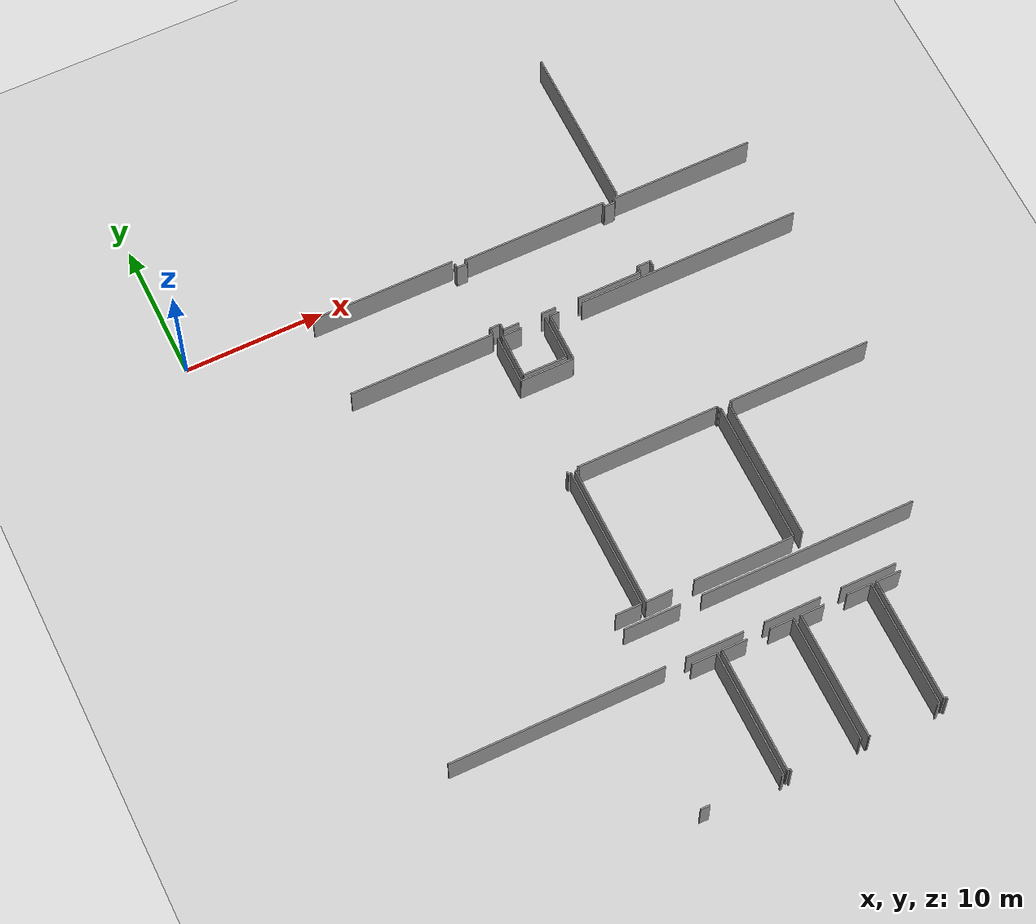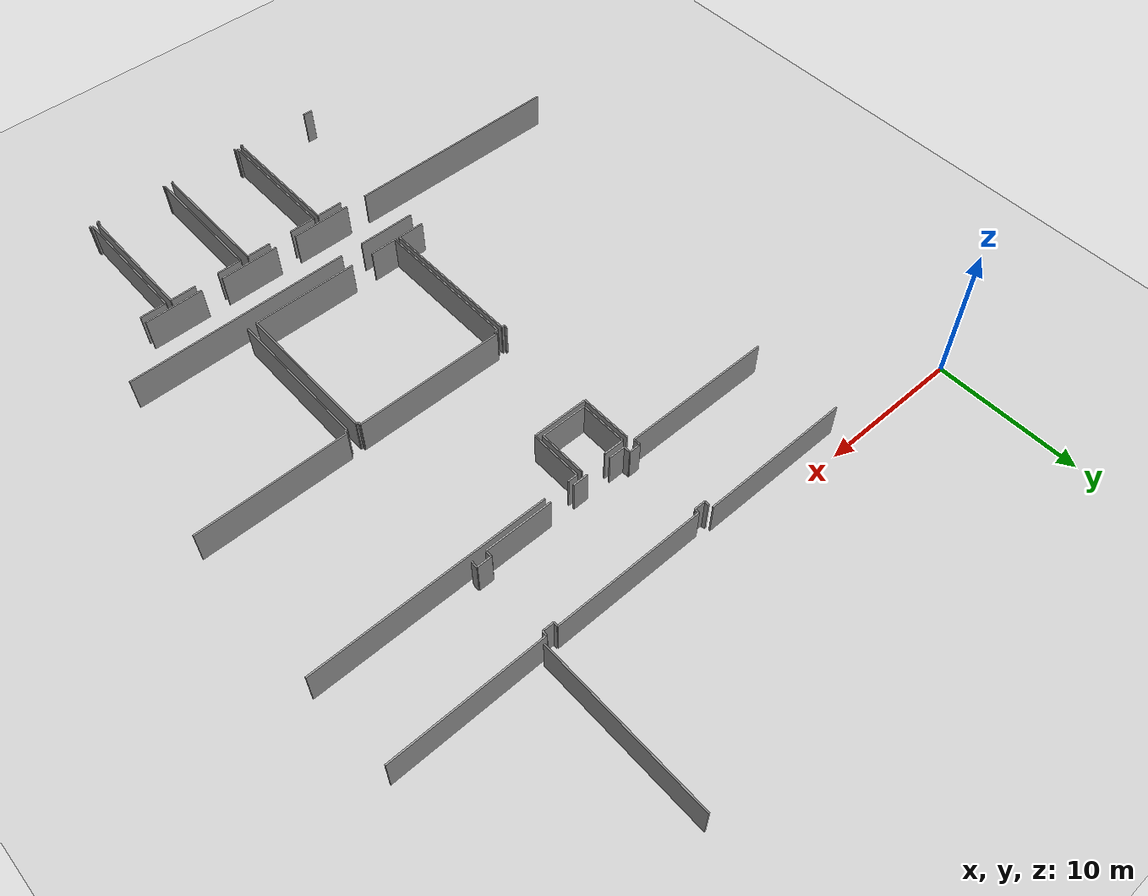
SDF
<sdf version="1.6">
 <world name="default">
  <model name="ground_plane">
   <static>1</static>
   <link name="link">
    <collision name="collision">
     <geometry><plane><normal>0 0 1</normal><size>100 100</size></plane></geometry>
     <surface><friction><ode><mu>100</mu><mu2>50</mu2></ode></friction></surface>
    </collision>
    <visual name="visual">
     <cast_shadows>0</cast_shadows>
     <geometry><plane><normal>0 0 1</normal><size>100 100</size></plane></geometry>
     <material>
      <script><uri>file://media/materials/scripts/gazebo.material</uri><name>Gazebo/Grey</name></script>
     </material>
    </visual>
   </link>
  </model>
  <model name="50015847">
   <static>1</static>
   <link name="Wall_406">
    <collision name="Wall_406_Collision">
     <geometry><box><size>10.3424518229 0.1 2.5</size></box></geometry>
     <pose>5.17122591143 0 1.25 0 0 0</pose>
    </collision>
    <visual name="Wall_406_Visual">
     <pose>5.17122591143 0 1.25 0 0 0</pose>
     <geometry><box><size>10.3424518229 0.1 2.5</size></box></geometry>
     <material>
      <script><uri>file://media/materials/scripts/gazebo.material</uri><name>Gazebo/Grey</name></script>
      <ambient>1 1 1 1</ambient>
     </material>
    </visual>
    <pose>151.553363502 -45.3030457111 0 0 0 3.14159265359</pose>
   </link>
   <link name="Wall_565">
    <collision name="Wall_565_Collision">
     <geometry><box><size>11.8620023389 0.1 2.5</size></box></geometry>
     <pose>5.93100116947 0 1.25 0 0 0</pose>
    </collision>
    <visual name="Wall_565_Visual">
     <pose>5.93100116947 0 1.25 0 0 0</pose>
     <geometry><box><size>11.8620023389 0.1 2.5</size></box></geometry>
     <material>
      <script><uri>file://media/materials/scripts/gazebo.material</uri><name>Gazebo/Grey</name></script>
      <ambient>1 1 1 1</ambient>
     </material>
    </visual>
    <pose>164.008745614 -45.3030457111 0 0 0 1.57079632679</pose>
   </link>
   <link name="Wall_997">
    <collision name="Wall_997_Collision">
     <geometry><box><size>3.28163929425 0.1 2.5</size></box></geometry>
     <pose>1.64081964712 0 1.25 0 0 0</pose>
    </collision>
    <visual name="Wall_997_Visual">
     <pose>1.64081964712 0 1.25 0 0 0</pose>
     <geometry><box><size>3.28163929425 0.1 2.5</size></box></geometry>
     <material>
      <script><uri>file://media/materials/scripts/gazebo.material</uri><name>Gazebo/Grey</name></script>
      <ambient>1 1 1 1</ambient>
     </material>
    </visual>
    <pose>152.162251487 -55.2206742259 0 0 0 1.57079632679</pose>
   </link>
   <link name="Wall_998">
    <collision name="Wall_998_Collision">
     <geometry><box><size>1.4270097117 0.1 2.5</size></box></geometry>
     <pose>0.71350485585 0 1.25 0 0 0</pose>
    </collision>
    <visual name="Wall_998_Visual">
     <pose>0.71350485585 0 1.25 0 0 0</pose>
     <geometry><box><size>1.4270097117 0.1 2.5</size></box></geometry>
     <material>
      <script><uri>file://media/materials/scripts/gazebo.material</uri><name>Gazebo/Grey</name></script>
      <ambient>1 1 1 1</ambient>
     </material>
    </visual>
    <pose>152.162251487 -51.9390349316 0 0 0 0.0</pose>
   </link>
   <link name="Wall_999">
    <collision name="Wall_999_Collision">
     <geometry><box><size>0.0439823053847 0.1 2.5</size></box></geometry>
     <pose>0.0219911526923 0 1.25 0 0 0</pose>
    </collision>
    <visual name="Wall_999_Visual">
     <pose>0.0219911526923 0 1.25 0 0 0</pose>
     <geometry><box><size>0.0439823053847 0.1 2.5</size></box></geometry>
     <material>
      <script><uri>file://media/materials/scripts/gazebo.material</uri><name>Gazebo/Grey</name></script>
      <ambient>1 1 1 1</ambient>
     </material>
    </visual>
    <pose>155.323892815 -51.9390349316 0 0 0 0.0</pose>
   </link>
   <link name="Wall_1000">
    <collision name="Wall_1000_Collision">
     <geometry><box><size>3.29613057406 0.1 2.5</size></box></geometry>
     <pose>1.64806528703 0 1.25 0 0 0</pose>
    </collision>
    <visual name="Wall_1000_Visual">
     <pose>1.64806528703 0 1.25 0 0 0</pose>
     <geometry><box><size>3.29613057406 0.1 2.5</size></box></geometry>
     <material>
      <script><uri>file://media/materials/scripts/gazebo.material</uri><name>Gazebo/Grey</name></script>
      <ambient>1 1 1 1</ambient>
     </material>
    </visual>
    <pose>155.367875121 -51.9390349316 0 0 0 -1.57079632679</pose>
   </link>
   <link name="Wall_1001">
    <collision name="Wall_1001_Collision">
     <geometry><box><size>3.20565638783 0.1 2.5</size></box></geometry>
     <pose>1.60282819391 0 1.25 0 0 0</pose>
    </collision>
    <visual name="Wall_1001_Visual">
     <pose>1.60282819391 0 1.25 0 0 0</pose>
     <geometry><box><size>3.20565638783 0.1 2.5</size></box></geometry>
     <material>
      <script><uri>file://media/materials/scripts/gazebo.material</uri><name>Gazebo/Grey</name></script>
      <ambient>1 1 1 1</ambient>
     </material>
    </visual>
    <pose>155.367875121 -55.2351655057 0 0 0 3.13707210385</pose>
   </link>
   <link name="Wall_1005">
    <collision name="Wall_1005_Collision">
     <geometry><box><size>3.60756597346 0.1 2.5</size></box></geometry>
     <pose>1.80378298673 0 1.25 0 0 0</pose>
    </collision>
    <visual name="Wall_1005_Visual">
     <pose>1.80378298673 0 1.25 0 0 0</pose>
     <geometry><box><size>3.60756597346 0.1 2.5</size></box></geometry>
     <material>
      <script><uri>file://media/materials/scripts/gazebo.material</uri><name>Gazebo/Grey</name></script>
      <ambient>1 1 1 1</ambient>
     </material>
    </visual>
    <pose>151.819545431 -51.9321706412 0 0 0 -1.57079632679</pose>
   </link>
   <link name="Wall_1006">
    <collision name="Wall_1006_Collision">
     <geometry><box><size>3.89790003559 0.1 2.5</size></box></geometry>
     <pose>1.9489500178 0 1.25 0 0 0</pose>
    </collision>
    <visual name="Wall_1006_Visual">
     <pose>1.9489500178 0 1.25 0 0 0</pose>
     <geometry><box><size>3.89790003559 0.1 2.5</size></box></geometry>
     <material>
      <script><uri>file://media/materials/scripts/gazebo.material</uri><name>Gazebo/Grey</name></script>
      <ambient>1 1 1 1</ambient>
     </material>
    </visual>
    <pose>151.819545431 -55.5397366146 0 0 0 0.0</pose>
   </link>
   <link name="Wall_1007">
    <collision name="Wall_1007_Collision">
     <geometry><box><size>3.61519296283 0.1 2.5</size></box></geometry>
     <pose>1.80759648142 0 1.25 0 0 0</pose>
    </collision>
    <visual name="Wall_1007_Visual">
     <pose>1.80759648142 0 1.25 0 0 0</pose>
     <geometry><box><size>3.61519296283 0.1 2.5</size></box></geometry>
     <material>
      <script><uri>file://media/materials/scripts/gazebo.material</uri><name>Gazebo/Grey</name></script>
      <ambient>1 1 1 1</ambient>
     </material>
    </visual>
    <pose>155.717445467 -55.5397366146 0 0 0 1.57079632679</pose>
   </link>
   <link name="Wall_1008">
    <collision name="Wall_1008_Collision">
     <geometry><box><size>0.673208928662 0.1 2.5</size></box></geometry>
     <pose>0.336604464331 0 1.25 0 0 0</pose>
    </collision>
    <visual name="Wall_1008_Visual">
     <pose>0.336604464331 0 1.25 0 0 0</pose>
     <geometry><box><size>0.673208928662 0.1 2.5</size></box></geometry>
     <material>
      <script><uri>file://media/materials/scripts/gazebo.material</uri><name>Gazebo/Grey</name></script>
      <ambient>1 1 1 1</ambient>
     </material>
    </visual>
    <pose>155.717445467 -51.9245436518 0 0 0 0.0</pose>
   </link>
   <link name="Wall_1009">
    <collision name="Wall_1009_Collision">
     <geometry><box><size>16.1158285453 0.1 2.5</size></box></geometry>
     <pose>8.05791427264 0 1.25 0 0 0</pose>
    </collision>
    <visual name="Wall_1009_Visual">
     <pose>8.05791427264 0 1.25 0 0 0</pose>
     <geometry><box><size>16.1158285453 0.1 2.5</size></box></geometry>
     <material>
      <script><uri>file://media/materials/scripts/gazebo.material</uri><name>Gazebo/Grey</name></script>
      <ambient>1 1 1 1</ambient>
     </material>
    </visual>
    <pose>158.131133371 -51.9245436518 0 0 0 0.0</pose>
   </link>
   <link name="Wall_1136">
    <collision name="Wall_1136_Collision">
     <geometry><box><size>0.322367417501 0.1 2.5</size></box></geometry>
     <pose>0.161183708751 0 1.25 0 0 0</pose>
    </collision>
    <visual name="Wall_1136_Visual">
     <pose>0.161183708751 0 1.25 0 0 0</pose>
     <geometry><box><size>0.322367417501 0.1 2.5</size></box></geometry>
     <material>
      <script><uri>file://media/materials/scripts/gazebo.material</uri><name>Gazebo/Grey</name></script>
      <ambient>1 1 1 1</ambient>
     </material>
    </visual>
    <pose>151.633955357 -45.5501601668 0 0 0 -1.57079632679</pose>
   </link>
   <link name="Wall_1137">
    <collision name="Wall_1137_Collision">
     <geometry><box><size>0.76447856816 0.1 2.5</size></box></geometry>
     <pose>0.38223928408 0 1.25 0 0 0</pose>
    </collision>
    <visual name="Wall_1137_Visual">
     <pose>0.38223928408 0 1.25 0 0 0</pose>
     <geometry><box><size>0.76447856816 0.1 2.5</size></box></geometry>
     <material>
      <script><uri>file://media/materials/scripts/gazebo.material</uri><name>Gazebo/Grey</name></script>
      <ambient>1 1 1 1</ambient>
     </material>
    </visual>
    <pose>151.633955357 -45.8725275843 0 0 0 0.0</pose>
   </link>
   <link name="Wall_1138">
    <collision name="Wall_1138_Collision">
     <geometry><box><size>0.296181420654 0.1 2.5</size></box></geometry>
     <pose>0.148090710327 0 1.25 0 0 0</pose>
    </collision>
    <visual name="Wall_1138_Visual">
     <pose>0.148090710327 0 1.25 0 0 0</pose>
     <geometry><box><size>0.296181420654 0.1 2.5</size></box></geometry>
     <material>
      <script><uri>file://media/materials/scripts/gazebo.material</uri><name>Gazebo/Grey</name></script>
      <ambient>1 1 1 1</ambient>
     </material>
    </visual>
    <pose>152.398433925 -45.8725275843 0 0 0 1.57079632679</pose>
   </link>
   <link name="Wall_1139">
    <collision name="Wall_1139_Collision">
     <geometry><box><size>10.4306706666 0.1 2.5</size></box></geometry>
     <pose>5.2153353333 0 1.25 0 0 0</pose>
    </collision>
    <visual name="Wall_1139_Visual">
     <pose>5.2153353333 0 1.25 0 0 0</pose>
     <geometry><box><size>10.4306706666 0.1 2.5</size></box></geometry>
     <material>
      <script><uri>file://media/materials/scripts/gazebo.material</uri><name>Gazebo/Grey</name></script>
      <ambient>1 1 1 1</ambient>
     </material>
    </visual>
    <pose>152.398433925 -45.5763461636 0 0 0 0.0</pose>
   </link>
   <link name="Wall_1140">
    <collision name="Wall_1140_Collision">
     <geometry><box><size>0.307367671734 0.1 2.5</size></box></geometry>
     <pose>0.153683835867 0 1.25 0 0 0</pose>
    </collision>
    <visual name="Wall_1140_Visual">
     <pose>0.153683835867 0 1.25 0 0 0</pose>
     <geometry><box><size>0.307367671734 0.1 2.5</size></box></geometry>
     <material>
      <script><uri>file://media/materials/scripts/gazebo.material</uri><name>Gazebo/Grey</name></script>
      <ambient>1 1 1 1</ambient>
     </material>
    </visual>
    <pose>162.829104591 -45.5763461636 0 0 0 -1.57079632679</pose>
   </link>
   <link name="Wall_1141">
    <collision name="Wall_1141_Collision">
     <geometry><box><size>0.75888544262 0.1 2.5</size></box></geometry>
     <pose>0.37944272131 0 1.25 0 0 0</pose>
    </collision>
    <visual name="Wall_1141_Visual">
     <pose>0.37944272131 0 1.25 0 0 0</pose>
     <geometry><box><size>0.75888544262 0.1 2.5</size></box></geometry>
     <material>
      <script><uri>file://media/materials/scripts/gazebo.material</uri><name>Gazebo/Grey</name></script>
      <ambient>1 1 1 1</ambient>
     </material>
    </visual>
    <pose>162.829104591 -45.8837138354 0 0 0 0.0</pose>
   </link>
   <link name="Wall_1142">
    <collision name="Wall_1142_Collision">
     <geometry><box><size>0.318045456857 0.1 2.5</size></box></geometry>
     <pose>0.159022728428 0 1.25 0 0 0</pose>
    </collision>
    <visual name="Wall_1142_Visual">
     <pose>0.159022728428 0 1.25 0 0 0</pose>
     <geometry><box><size>0.318045456857 0.1 2.5</size></box></geometry>
     <material>
      <script><uri>file://media/materials/scripts/gazebo.material</uri><name>Gazebo/Grey</name></script>
      <ambient>1 1 1 1</ambient>
     </material>
    </visual>
    <pose>163.587990034 -45.8837138354 0 0 0 1.57079632679</pose>
   </link>
   <link name="Wall_1143">
    <collision name="Wall_1143_Collision">
     <geometry><box><size>10.4283825698 0.1 2.5</size></box></geometry>
     <pose>5.21419128489 0 1.25 0 0 0</pose>
    </collision>
    <visual name="Wall_1143_Visual">
     <pose>5.21419128489 0 1.25 0 0 0</pose>
     <geometry><box><size>10.4283825698 0.1 2.5</size></box></geometry>
     <material>
      <script><uri>file://media/materials/scripts/gazebo.material</uri><name>Gazebo/Grey</name></script>
      <ambient>1 1 1 1</ambient>
     </material>
    </visual>
    <pose>163.587990034 -45.5656683785 0 0 0 0.0</pose>
   </link>
   <link name="Wall_1224">
    <collision name="Wall_1224_Collision">
     <geometry><box><size>0.47287334113 0.1 2.5</size></box></geometry>
     <pose>0.236436670565 0 1.25 0 0 0</pose>
    </collision>
    <visual name="Wall_1224_Visual">
     <pose>0.236436670565 0 1.25 0 0 0</pose>
     <geometry><box><size>0.47287334113 0.1 2.5</size></box></geometry>
     <material>
      <script><uri>file://media/materials/scripts/gazebo.material</uri><name>Gazebo/Grey</name></script>
      <ambient>1 1 1 1</ambient>
     </material>
    </visual>
    <pose>163.712564194 -51.5498042406 0 0 0 1.57079632679</pose>
   </link>
   <link name="Wall_1225">
    <collision name="Wall_1225_Collision">
     <geometry><box><size>0.997355977017 0.1 2.5</size></box></geometry>
     <pose>0.498677988509 0 1.25 0 0 0</pose>
    </collision>
    <visual name="Wall_1225_Visual">
     <pose>0.498677988509 0 1.25 0 0 0</pose>
     <geometry><box><size>0.997355977017 0.1 2.5</size></box></geometry>
     <material>
      <script><uri>file://media/materials/scripts/gazebo.material</uri><name>Gazebo/Grey</name></script>
      <ambient>1 1 1 1</ambient>
     </material>
    </visual>
    <pose>163.712564194 -51.0769308995 0 0 0 3.14159265359</pose>
   </link>
   <link name="Wall_1226">
    <collision name="Wall_1226_Collision">
     <geometry><box><size>0.465246351757 0.1 2.5</size></box></geometry>
     <pose>0.232623175878 0 1.25 0 0 0</pose>
    </collision>
    <visual name="Wall_1226_Visual">
     <pose>0.232623175878 0 1.25 0 0 0</pose>
     <geometry><box><size>0.465246351757 0.1 2.5</size></box></geometry>
     <material>
      <script><uri>file://media/materials/scripts/gazebo.material</uri><name>Gazebo/Grey</name></script>
      <ambient>1 1 1 1</ambient>
     </material>
    </visual>
    <pose>162.715208217 -51.0769308995 0 0 0 -1.57079632679</pose>
   </link>
   <link name="Wall_1227">
    <collision name="Wall_1227_Collision">
     <geometry><box><size>4.66110743886 0.1 2.5</size></box></geometry>
     <pose>2.33055371943 0 1.25 0 0 0</pose>
    </collision>
    <visual name="Wall_1227_Visual">
     <pose>2.33055371943 0 1.25 0 0 0</pose>
     <geometry><box><size>4.66110743886 0.1 2.5</size></box></geometry>
     <material>
      <script><uri>file://media/materials/scripts/gazebo.material</uri><name>Gazebo/Grey</name></script>
      <ambient>1 1 1 1</ambient>
     </material>
    </visual>
    <pose>162.715208217 -51.5421772512 0 0 0 3.14159265359</pose>
   </link>
   <link name="Wall_1228">
    <collision name="Wall_1228_Collision">
     <geometry><box><size>1.06065998881 0.1 2.5</size></box></geometry>
     <pose>0.530329994407 0 1.25 0 0 0</pose>
    </collision>
    <visual name="Wall_1228_Visual">
     <pose>0.530329994407 0 1.25 0 0 0</pose>
     <geometry><box><size>1.06065998881 0.1 2.5</size></box></geometry>
     <material>
      <script><uri>file://media/materials/scripts/gazebo.material</uri><name>Gazebo/Grey</name></script>
      <ambient>1 1 1 1</ambient>
     </material>
    </visual>
    <pose>156.329384248 -51.5421772512 0 0 0 3.14159265359</pose>
   </link>
   <link name="Wall_1229">
    <collision name="Wall_1229_Collision">
     <geometry><box><size>1.14811613362 0.1 2.5</size></box></geometry>
     <pose>0.574058066812 0 1.25 0 0 0</pose>
    </collision>
    <visual name="Wall_1229_Visual">
     <pose>0.574058066812 0 1.25 0 0 0</pose>
     <geometry><box><size>1.14811613362 0.1 2.5</size></box></geometry>
     <material>
      <script><uri>file://media/materials/scripts/gazebo.material</uri><name>Gazebo/Grey</name></script>
      <ambient>1 1 1 1</ambient>
     </material>
    </visual>
    <pose>153.570447959 -51.5421772512 0 0 0 3.14159265359</pose>
   </link>
   <link name="Wall_1230">
    <collision name="Wall_1230_Collision">
     <geometry><box><size>0.469568312401 0.1 2.5</size></box></geometry>
     <pose>0.234784156201 0 1.25 0 0 0</pose>
    </collision>
    <visual name="Wall_1230_Visual">
     <pose>0.234784156201 0 1.25 0 0 0</pose>
     <geometry><box><size>0.469568312401 0.1 2.5</size></box></geometry>
     <material>
      <script><uri>file://media/materials/scripts/gazebo.material</uri><name>Gazebo/Grey</name></script>
      <ambient>1 1 1 1</ambient>
     </material>
    </visual>
    <pose>152.422331825 -51.5421772512 0 0 0 1.57079632679</pose>
   </link>
   <link name="Wall_1231">
    <collision name="Wall_1231_Collision">
     <geometry><box><size>0.780495245843 0.1 2.5</size></box></geometry>
     <pose>0.390247622922 0 1.25 0 0 0</pose>
    </collision>
    <visual name="Wall_1231_Visual">
     <pose>0.390247622922 0 1.25 0 0 0</pose>
     <geometry><box><size>0.780495245843 0.1 2.5</size></box></geometry>
     <material>
      <script><uri>file://media/materials/scripts/gazebo.material</uri><name>Gazebo/Grey</name></script>
      <ambient>1 1 1 1</ambient>
     </material>
    </visual>
    <pose>152.422331825 -51.0726089388 0 0 0 3.14159265359</pose>
   </link>
   <link name="Wall_1232">
    <collision name="Wall_1232_Collision">
     <geometry><box><size>0.469568312401 0.1 2.5</size></box></geometry>
     <pose>0.234784156201 0 1.25 0 0 0</pose>
    </collision>
    <visual name="Wall_1232_Visual">
     <pose>0.234784156201 0 1.25 0 0 0</pose>
     <geometry><box><size>0.469568312401 0.1 2.5</size></box></geometry>
     <material>
      <script><uri>file://media/materials/scripts/gazebo.material</uri><name>Gazebo/Grey</name></script>
      <ambient>1 1 1 1</ambient>
     </material>
    </visual>
    <pose>151.641836579 -51.0726089388 0 0 0 -1.57079632679</pose>
   </link>
   <link name="Wall_1233">
    <collision name="Wall_1233_Collision">
     <geometry><box><size>10.4436365485 0.1 2.5</size></box></geometry>
     <pose>5.22181827427 0 1.25 0 0 0</pose>
    </collision>
    <visual name="Wall_1233_Visual">
     <pose>5.22181827427 0 1.25 0 0 0</pose>
     <geometry><box><size>10.4436365485 0.1 2.5</size></box></geometry>
     <material>
      <script><uri>file://media/materials/scripts/gazebo.material</uri><name>Gazebo/Grey</name></script>
      <ambient>1 1 1 1</ambient>
     </material>
    </visual>
    <pose>151.641836579 -51.5421772512 0 0 0 3.14159265359</pose>
   </link>
   <link name="Wall_1397">
    <collision name="Wall_1397_Collision">
     <geometry><box><size>1.80759648142 0.1 2.5</size></box></geometry>
     <pose>0.903798240708 0 1.25 0 0 0</pose>
    </collision>
    <visual name="Wall_1397_Visual">
     <pose>0.903798240708 0 1.25 0 0 0</pose>
     <geometry><box><size>1.80759648142 0.1 2.5</size></box></geometry>
     <material>
      <script><uri>file://media/materials/scripts/gazebo.material</uri><name>Gazebo/Grey</name></script>
      <ambient>1 1 1 1</ambient>
     </material>
    </visual>
    <pose>152.834443484 -78.6441755224 0 0 0 0.0</pose>
   </link>
   <link name="Wall_1398">
    <collision name="Wall_1398_Collision">
     <geometry><box><size>9.2177251233 0.1 2.5</size></box></geometry>
     <pose>4.60886256165 0 1.25 0 0 0</pose>
    </collision>
    <visual name="Wall_1398_Visual">
     <pose>4.60886256165 0 1.25 0 0 0</pose>
     <geometry><box><size>9.2177251233 0.1 2.5</size></box></geometry>
     <material>
      <script><uri>file://media/materials/scripts/gazebo.material</uri><name>Gazebo/Grey</name></script>
      <ambient>1 1 1 1</ambient>
     </material>
    </visual>
    <pose>154.642039965 -78.6441755224 0 0 0 -1.57079632679</pose>
   </link>
   <link name="Wall_1399">
    <collision name="Wall_1399_Collision">
     <geometry><box><size>0.151522855545 0.1 2.5</size></box></geometry>
     <pose>0.0757614277724 0 1.25 0 0 0</pose>
    </collision>
    <visual name="Wall_1399_Visual">
     <pose>0.0757614277724 0 1.25 0 0 0</pose>
     <geometry><box><size>0.151522855545 0.1 2.5</size></box></geometry>
     <material>
      <script><uri>file://media/materials/scripts/gazebo.material</uri><name>Gazebo/Grey</name></script>
      <ambient>1 1 1 1</ambient>
     </material>
    </visual>
    <pose>154.642039965 -87.8619006458 0 0 0 3.14159265359</pose>
   </link>
   <link name="Wall_1401">
    <collision name="Wall_1401_Collision">
     <geometry><box><size>0.660497279707 0.1 2.5</size></box></geometry>
     <pose>0.330248639854 0 1.25 0 0 0</pose>
    </collision>
    <visual name="Wall_1401_Visual">
     <pose>0.330248639854 0 1.25 0 0 0</pose>
     <geometry><box><size>0.660497279707 0.1 2.5</size></box></geometry>
     <material>
      <script><uri>file://media/materials/scripts/gazebo.material</uri><name>Gazebo/Grey</name></script>
      <ambient>1 1 1 1</ambient>
     </material>
    </visual>
    <pose>149.54085524 -87.6244470433 0 0 0 3.14159265359</pose>
   </link>
   <link name="Wall_1406">
    <collision name="Wall_1406_Collision">
     <geometry><box><size>8.97594956018 0.1 2.5</size></box></geometry>
     <pose>4.48797478009 0 1.25 0 0 0</pose>
    </collision>
    <visual name="Wall_1406_Visual">
     <pose>4.48797478009 0 1.25 0 0 0</pose>
     <geometry><box><size>8.97594956018 0.1 2.5</size></box></geometry>
     <material>
      <script><uri>file://media/materials/scripts/gazebo.material</uri><name>Gazebo/Grey</name></script>
      <ambient>1 1 1 1</ambient>
     </material>
    </visual>
    <pose>154.996949204 -87.6023287741 0 0 0 1.57079632679</pose>
   </link>
   <link name="Wall_1407">
    <collision name="Wall_1407_Collision">
     <geometry><box><size>1.82666395485 0.1 2.5</size></box></geometry>
     <pose>0.913331977424 0 1.25 0 0 0</pose>
    </collision>
    <visual name="Wall_1407_Visual">
     <pose>0.913331977424 0 1.25 0 0 0</pose>
     <geometry><box><size>1.82666395485 0.1 2.5</size></box></geometry>
     <material>
      <script><uri>file://media/materials/scripts/gazebo.material</uri><name>Gazebo/Grey</name></script>
      <ambient>1 1 1 1</ambient>
     </material>
    </visual>
    <pose>154.996949204 -78.6263792139 0 0 0 0.0</pose>
   </link>
   <link name="Wall_1408">
    <collision name="Wall_1408_Collision">
     <geometry><box><size>1.67895459399 0.1 2.5</size></box></geometry>
     <pose>0.839477296995 0 1.25 0 0 0</pose>
    </collision>
    <visual name="Wall_1408_Visual">
     <pose>0.839477296995 0 1.25 0 0 0</pose>
     <geometry><box><size>1.67895459399 0.1 2.5</size></box></geometry>
     <material>
      <script><uri>file://media/materials/scripts/gazebo.material</uri><name>Gazebo/Grey</name></script>
      <ambient>1 1 1 1</ambient>
     </material>
    </visual>
    <pose>158.476635989 -78.6263792139 0 0 0 0.0</pose>
   </link>
   <link name="Wall_1409">
    <collision name="Wall_1409_Collision">
     <geometry><box><size>9.21797935628 0.1 2.5</size></box></geometry>
     <pose>4.60898967814 0 1.25 0 0 0</pose>
    </collision>
    <visual name="Wall_1409_Visual">
     <pose>4.60898967814 0 1.25 0 0 0</pose>
     <geometry><box><size>9.21797935628 0.1 2.5</size></box></geometry>
     <material>
      <script><uri>file://media/materials/scripts/gazebo.material</uri><name>Gazebo/Grey</name></script>
      <ambient>1 1 1 1</ambient>
     </material>
    </visual>
    <pose>160.155590583 -78.6263792139 0 0 0 -1.57079632679</pose>
   </link>
   <link name="Wall_1410">
    <collision name="Wall_1410_Collision">
     <geometry><box><size>0.0831341841664 0.1 2.5</size></box></geometry>
     <pose>0.0415670920832 0 1.25 0 0 0</pose>
    </collision>
    <visual name="Wall_1410_Visual">
     <pose>0.0415670920832 0 1.25 0 0 0</pose>
     <geometry><box><size>0.0831341841664 0.1 2.5</size></box></geometry>
     <material>
      <script><uri>file://media/materials/scripts/gazebo.material</uri><name>Gazebo/Grey</name></script>
      <ambient>1 1 1 1</ambient>
     </material>
    </visual>
    <pose>160.155590583 -87.8443585702 0 0 0 3.14159265359</pose>
   </link>
   <link name="Wall_1411">
    <collision name="Wall_1411_Collision">
     <geometry><box><size>0.188132404536 0.1 2.5</size></box></geometry>
     <pose>0.0940662022678 0 1.25 0 0 0</pose>
    </collision>
    <visual name="Wall_1411_Visual">
     <pose>0.0940662022678 0 1.25 0 0 0</pose>
     <geometry><box><size>0.188132404536 0.1 2.5</size></box></geometry>
     <material>
      <script><uri>file://media/materials/scripts/gazebo.material</uri><name>Gazebo/Grey</name></script>
      <ambient>1 1 1 1</ambient>
     </material>
    </visual>
    <pose>155.180759648 -87.8443585702 0 0 0 1.57079632679</pose>
   </link>
   <link name="Wall_1412">
    <collision name="Wall_1412_Collision">
     <geometry><box><size>0.182030813037 0.1 2.5</size></box></geometry>
     <pose>0.0910154065185 0 1.25 0 0 0</pose>
    </collision>
    <visual name="Wall_1412_Visual">
     <pose>0.0910154065185 0 1.25 0 0 0</pose>
     <geometry><box><size>0.182030813037 0.1 2.5</size></box></geometry>
     <material>
      <script><uri>file://media/materials/scripts/gazebo.material</uri><name>Gazebo/Grey</name></script>
      <ambient>1 1 1 1</ambient>
     </material>
    </visual>
    <pose>155.180759648 -87.6562261657 0 0 0 3.14159265359</pose>
   </link>
   <link name="Wall_1413">
    <collision name="Wall_1413_Collision">
     <geometry><box><size>0.053926764264 0.1 2.5</size></box></geometry>
     <pose>0.026963382132 0 1.25 0 0 0</pose>
    </collision>
    <visual name="Wall_1413_Visual">
     <pose>0.026963382132 0 1.25 0 0 0</pose>
     <geometry><box><size>0.053926764264 0.1 2.5</size></box></geometry>
     <material>
      <script><uri>file://media/materials/scripts/gazebo.material</uri><name>Gazebo/Grey</name></script>
      <ambient>1 1 1 1</ambient>
     </material>
    </visual>
    <pose>154.998728835 -87.6562261657 0 0 0 1.603803203</pose>
   </link>
   <link name="Wall_1414">
    <collision name="Wall_1414_Collision">
     <geometry><box><size>9.22408094778 0.1 2.5</size></box></geometry>
     <pose>4.61204047389 0 1.25 0 0 0</pose>
    </collision>
    <visual name="Wall_1414_Visual">
     <pose>4.61204047389 0 1.25 0 0 0</pose>
     <geometry><box><size>9.22408094778 0.1 2.5</size></box></geometry>
     <material>
      <script><uri>file://media/materials/scripts/gazebo.material</uri><name>Gazebo/Grey</name></script>
      <ambient>1 1 1 1</ambient>
     </material>
    </visual>
    <pose>160.696852596 -87.8662226064 0 0 0 1.57079632679</pose>
   </link>
   <link name="Wall_1415">
    <collision name="Wall_1415_Collision">
     <geometry><box><size>1.70971678446 0.1 2.5</size></box></geometry>
     <pose>0.854858392231 0 1.25 0 0 0</pose>
    </collision>
    <visual name="Wall_1415_Visual">
     <pose>0.854858392231 0 1.25 0 0 0</pose>
     <geometry><box><size>1.70971678446 0.1 2.5</size></box></geometry>
     <material>
      <script><uri>file://media/materials/scripts/gazebo.material</uri><name>Gazebo/Grey</name></script>
      <ambient>1 1 1 1</ambient>
     </material>
    </visual>
    <pose>160.696852596 -78.6421416586 0 0 0 0.0</pose>
   </link>
   <link name="Wall_1416">
    <collision name="Wall_1416_Collision">
     <geometry><box><size>1.77047846647 0.1 2.5</size></box></geometry>
     <pose>0.885239233233 0 1.25 0 0 0</pose>
    </collision>
    <visual name="Wall_1416_Visual">
     <pose>0.885239233233 0 1.25 0 0 0</pose>
     <geometry><box><size>1.77047846647 0.1 2.5</size></box></geometry>
     <material>
      <script><uri>file://media/materials/scripts/gazebo.material</uri><name>Gazebo/Grey</name></script>
      <ambient>1 1 1 1</ambient>
     </material>
    </visual>
    <pose>164.064931103 -78.6421416586 0 0 0 0.0</pose>
   </link>
   <link name="Wall_1417">
    <collision name="Wall_1417_Collision">
     <geometry><box><size>9.20323384349 0.1 2.5</size></box></geometry>
     <pose>4.60161692175 0 1.25 0 0 0</pose>
    </collision>
    <visual name="Wall_1417_Visual">
     <pose>4.60161692175 0 1.25 0 0 0</pose>
     <geometry><box><size>9.20323384349 0.1 2.5</size></box></geometry>
     <material>
      <script><uri>file://media/materials/scripts/gazebo.material</uri><name>Gazebo/Grey</name></script>
      <ambient>1 1 1 1</ambient>
     </material>
    </visual>
    <pose>165.835409569 -78.6421416586 0 0 0 -1.57079632679</pose>
   </link>
   <link name="Wall_1418">
    <collision name="Wall_1418_Collision">
     <geometry><box><size>0.167793766207 0.1 2.5</size></box></geometry>
     <pose>0.0838968831037 0 1.25 0 0 0</pose>
    </collision>
    <visual name="Wall_1418_Visual">
     <pose>0.0838968831037 0 1.25 0 0 0</pose>
     <geometry><box><size>0.167793766207 0.1 2.5</size></box></geometry>
     <material>
      <script><uri>file://media/materials/scripts/gazebo.material</uri><name>Gazebo/Grey</name></script>
      <ambient>1 1 1 1</ambient>
     </material>
    </visual>
    <pose>165.835409569 -87.8453755021 0 0 0 3.14159265359</pose>
   </link>
   <link name="Wall_1419">
    <collision name="Wall_1419_Collision">
     <geometry><box><size>0.105302796633 0.1 2.5</size></box></geometry>
     <pose>0.0526513983164 0 1.25 0 0 0</pose>
    </collision>
    <visual name="Wall_1419_Visual">
     <pose>0.0526513983164 0 1.25 0 0 0</pose>
     <geometry><box><size>0.105302796633 0.1 2.5</size></box></geometry>
     <material>
      <script><uri>file://media/materials/scripts/gazebo.material</uri><name>Gazebo/Grey</name></script>
      <ambient>1 1 1 1</ambient>
     </material>
    </visual>
    <pose>160.800071185 -87.8453755021 0 0 0 -2.94230315661</pose>
   </link>
   <link name="Wall_1420">
    <collision name="Wall_1420_Collision">
     <geometry><box><size>8.96730563889 0.1 2.5</size></box></geometry>
     <pose>4.48365281944 0 1.25 0 0 0</pose>
    </collision>
    <visual name="Wall_1420_Visual">
     <pose>4.48365281944 0 1.25 0 0 0</pose>
     <geometry><box><size>8.96730563889 0.1 2.5</size></box></geometry>
     <material>
      <script><uri>file://media/materials/scripts/gazebo.material</uri><name>Gazebo/Grey</name></script>
      <ambient>1 1 1 1</ambient>
     </material>
    </visual>
    <pose>166.20836935 -87.6127523262 0 0 0 1.57079632679</pose>
   </link>
   <link name="Wall_1421">
    <collision name="Wall_1421_Collision">
     <geometry><box><size>1.79768139523 0.1 2.5</size></box></geometry>
     <pose>0.898840697615 0 1.25 0 0 0</pose>
    </collision>
    <visual name="Wall_1421_Visual">
     <pose>0.898840697615 0 1.25 0 0 0</pose>
     <geometry><box><size>1.79768139523 0.1 2.5</size></box></geometry>
     <material>
      <script><uri>file://media/materials/scripts/gazebo.material</uri><name>Gazebo/Grey</name></script>
      <ambient>1 1 1 1</ambient>
     </material>
    </visual>
    <pose>166.20836935 -78.6454466873 0 0 0 0.0</pose>
   </link>
   <link name="Wall_1428">
    <collision name="Wall_1428_Collision">
     <geometry><box><size>0.187623938577 0.1 2.5</size></box></geometry>
     <pose>0.0938119692887 0 1.25 0 0 0</pose>
    </collision>
    <visual name="Wall_1428_Visual">
     <pose>0.0938119692887 0 1.25 0 0 0</pose>
     <geometry><box><size>0.187623938577 0.1 2.5</size></box></geometry>
     <material>
      <script><uri>file://media/materials/scripts/gazebo.material</uri><name>Gazebo/Grey</name></script>
      <ambient>1 1 1 1</ambient>
     </material>
    </visual>
    <pose>166.385823969 -87.8311384553 0 0 0 1.57079632679</pose>
   </link>
   <link name="Wall_1429">
    <collision name="Wall_1429_Collision">
     <geometry><box><size>0.180505415162 0.1 2.5</size></box></geometry>
     <pose>0.0902527075812 0 1.25 0 0 0</pose>
    </collision>
    <visual name="Wall_1429_Visual">
     <pose>0.0902527075812 0 1.25 0 0 0</pose>
     <geometry><box><size>0.180505415162 0.1 2.5</size></box></geometry>
     <material>
      <script><uri>file://media/materials/scripts/gazebo.material</uri><name>Gazebo/Grey</name></script>
      <ambient>1 1 1 1</ambient>
     </material>
    </visual>
    <pose>166.385823969 -87.6435145167 0 0 0 3.14159265359</pose>
   </link>
   <link name="Wall_1430">
    <collision name="Wall_1430_Collision">
     <geometry><box><size>0.0309130994451 0.1 2.5</size></box></geometry>
     <pose>0.0154565497225 0 1.25 0 0 0</pose>
    </collision>
    <visual name="Wall_1430_Visual">
     <pose>0.0154565497225 0 1.25 0 0 0</pose>
     <geometry><box><size>0.0309130994451 0.1 2.5</size></box></geometry>
     <material>
      <script><uri>file://media/materials/scripts/gazebo.material</uri><name>Gazebo/Grey</name></script>
      <ambient>1 1 1 1</ambient>
     </material>
    </visual>
    <pose>166.205318554 -87.6435145167 0 0 0 1.47194600473</pose>
   </link>
   <link name="Wall_1563">
    <collision name="Wall_1563_Collision">
     <geometry><box><size>10.3676208878 0.1 2.5</size></box></geometry>
     <pose>5.18381044389 0 1.25 0 0 0</pose>
    </collision>
    <visual name="Wall_1563_Visual">
     <pose>5.18381044389 0 1.25 0 0 0</pose>
     <geometry><box><size>10.3676208878 0.1 2.5</size></box></geometry>
     <material>
      <script><uri>file://media/materials/scripts/gazebo.material</uri><name>Gazebo/Grey</name></script>
      <ambient>1 1 1 1</ambient>
     </material>
    </visual>
    <pose>163.538668836 -73.4873137743 0 0 0 1.57079632679</pose>
   </link>
   <link name="Wall_1564">
    <collision name="Wall_1564_Collision">
     <geometry><box><size>0.164742970458 0.1 2.5</size></box></geometry>
     <pose>0.0823714852291 0 1.25 0 0 0</pose>
    </collision>
    <visual name="Wall_1564_Visual">
     <pose>0.0823714852291 0 1.25 0 0 0</pose>
     <geometry><box><size>0.164742970458 0.1 2.5</size></box></geometry>
     <material>
      <script><uri>file://media/materials/scripts/gazebo.material</uri><name>Gazebo/Grey</name></script>
      <ambient>1 1 1 1</ambient>
     </material>
    </visual>
    <pose>163.538668836 -63.1196928866 0 0 0 0.0</pose>
   </link>
   <link name="Wall_1565">
    <collision name="Wall_1565_Collision">
     <geometry><box><size>0.202369451365 0.1 2.5</size></box></geometry>
     <pose>0.101184725683 0 1.25 0 0 0</pose>
    </collision>
    <visual name="Wall_1565_Visual">
     <pose>0.101184725683 0 1.25 0 0 0</pose>
     <geometry><box><size>0.202369451365 0.1 2.5</size></box></geometry>
     <material>
      <script><uri>file://media/materials/scripts/gazebo.material</uri><name>Gazebo/Grey</name></script>
      <ambient>1 1 1 1</ambient>
     </material>
    </visual>
    <pose>163.703411807 -63.1196928866 0 0 0 1.57079632679</pose>
   </link>
   <link name="Wall_1566">
    <collision name="Wall_1566_Collision">
     <geometry><box><size>10.303554177 0.1 2.5</size></box></geometry>
     <pose>5.15177708852 0 1.25 0 0 0</pose>
    </collision>
    <visual name="Wall_1566_Visual">
     <pose>5.15177708852 0 1.25 0 0 0</pose>
     <geometry><box><size>10.303554177 0.1 2.5</size></box></geometry>
     <material>
      <script><uri>file://media/materials/scripts/gazebo.material</uri><name>Gazebo/Grey</name></script>
      <ambient>1 1 1 1</ambient>
     </material>
    </visual>
    <pose>163.703411807 -62.9173234352 0 0 0 0.0</pose>
   </link>
   <link name="Wall_1574">
    <collision name="Wall_1574_Collision">
     <geometry><box><size>10.3699089846 0.1 2.5</size></box></geometry>
     <pose>5.1849544923 0 1.25 0 0 0</pose>
    </collision>
    <visual name="Wall_1574_Visual">
     <pose>5.1849544923 0 1.25 0 0 0</pose>
     <geometry><box><size>10.3699089846 0.1 2.5</size></box></geometry>
     <material>
      <script><uri>file://media/materials/scripts/gazebo.material</uri><name>Gazebo/Grey</name></script>
      <ambient>1 1 1 1</ambient>
     </material>
    </visual>
    <pose>152.169115778 -73.5066354808 0 0 0 1.57079632679</pose>
   </link>
   <link name="Wall_1575">
    <collision name="Wall_1575_Collision">
     <geometry><box><size>0.235673971628 0.1 2.5</size></box></geometry>
     <pose>0.117836985814 0 1.25 0 0 0</pose>
    </collision>
    <visual name="Wall_1575_Visual">
     <pose>0.117836985814 0 1.25 0 0 0</pose>
     <geometry><box><size>0.235673971628 0.1 2.5</size></box></geometry>
     <material>
      <script><uri>file://media/materials/scripts/gazebo.material</uri><name>Gazebo/Grey</name></script>
      <ambient>1 1 1 1</ambient>
     </material>
    </visual>
    <pose>152.169115778 -63.1367264962 0 0 0 0.0</pose>
   </link>
   <link name="Wall_1576">
    <collision name="Wall_1576_Collision">
     <geometry><box><size>0.218386129049 0.1 2.5</size></box></geometry>
     <pose>0.109193064524 0 1.25 0 0 0</pose>
    </collision>
    <visual name="Wall_1576_Visual">
     <pose>0.109193064524 0 1.25 0 0 0</pose>
     <geometry><box><size>0.218386129049 0.1 2.5</size></box></geometry>
     <material>
      <script><uri>file://media/materials/scripts/gazebo.material</uri><name>Gazebo/Grey</name></script>
      <ambient>1 1 1 1</ambient>
     </material>
    </visual>
    <pose>152.404789749 -63.1367264962 0 0 0 1.57079632679</pose>
   </link>
   <link name="Wall_1577">
    <collision name="Wall_1577_Collision">
     <geometry><box><size>10.3302486399 0.1 2.5</size></box></geometry>
     <pose>5.16512431993 0 1.25 0 0 0</pose>
    </collision>
    <visual name="Wall_1577_Visual">
     <pose>5.16512431993 0 1.25 0 0 0</pose>
     <geometry><box><size>10.3302486399 0.1 2.5</size></box></geometry>
     <material>
      <script><uri>file://media/materials/scripts/gazebo.material</uri><name>Gazebo/Grey</name></script>
      <ambient>1 1 1 1</ambient>
     </material>
    </visual>
    <pose>152.404789749 -62.9183403671 0 0 0 0.0</pose>
   </link>
   <link name="Wall_1578">
    <collision name="Wall_1578_Collision">
     <geometry><box><size>0.208725275843 0.1 2.5</size></box></geometry>
     <pose>0.104362637921 0 1.25 0 0 0</pose>
    </collision>
    <visual name="Wall_1578_Visual">
     <pose>0.104362637921 0 1.25 0 0 0</pose>
     <geometry><box><size>0.208725275843 0.1 2.5</size></box></geometry>
     <material>
      <script><uri>file://media/materials/scripts/gazebo.material</uri><name>Gazebo/Grey</name></script>
      <ambient>1 1 1 1</ambient>
     </material>
    </visual>
    <pose>162.735038389 -62.9183403671 0 0 0 -1.57079632679</pose>
   </link>
   <link name="Wall_1579">
    <collision name="Wall_1579_Collision">
     <geometry><box><size>0.159149844918 0.1 2.5</size></box></geometry>
     <pose>0.0795749224589 0 1.25 0 0 0</pose>
    </collision>
    <visual name="Wall_1579_Visual">
     <pose>0.0795749224589 0 1.25 0 0 0</pose>
     <geometry><box><size>0.159149844918 0.1 2.5</size></box></geometry>
     <material>
      <script><uri>file://media/materials/scripts/gazebo.material</uri><name>Gazebo/Grey</name></script>
      <ambient>1 1 1 1</ambient>
     </material>
    </visual>
    <pose>162.735038389 -63.127065643 0 0 0 0.0</pose>
   </link>
   <link name="Wall_1580">
    <collision name="Wall_1580_Collision">
     <geometry><box><size>10.3561804037 0.1 2.5</size></box></geometry>
     <pose>5.17809020186 0 1.25 0 0 0</pose>
    </collision>
    <visual name="Wall_1580_Visual">
     <pose>5.17809020186 0 1.25 0 0 0</pose>
     <geometry><box><size>10.3561804037 0.1 2.5</size></box></geometry>
     <material>
      <script><uri>file://media/materials/scripts/gazebo.material</uri><name>Gazebo/Grey</name></script>
      <ambient>1 1 1 1</ambient>
     </material>
    </visual>
    <pose>162.894188234 -63.127065643 0 0 0 -1.57079632679</pose>
   </link>
   <link name="Wall_1581">
    <collision name="Wall_1581_Collision">
     <geometry><box><size>7.2591142523 0.1 2.5</size></box></geometry>
     <pose>3.62955712615 0 1.25 0 0 0</pose>
    </collision>
    <visual name="Wall_1581_Visual">
     <pose>3.62955712615 0 1.25 0 0 0</pose>
     <geometry><box><size>7.2591142523 0.1 2.5</size></box></geometry>
     <material>
      <script><uri>file://media/materials/scripts/gazebo.material</uri><name>Gazebo/Grey</name></script>
      <ambient>1 1 1 1</ambient>
     </material>
    </visual>
    <pose>162.894188234 -73.4832460467 0 0 0 3.14159265359</pose>
   </link>
   <link name="Wall_1582">
    <collision name="Wall_1582_Collision">
     <geometry><box><size>1.88757055505 0.1 2.5</size></box></geometry>
     <pose>0.943785277523 0 1.25 0 0 0</pose>
    </collision>
    <visual name="Wall_1582_Visual">
     <pose>0.943785277523 0 1.25 0 0 0</pose>
     <geometry><box><size>1.88757055505 0.1 2.5</size></box></geometry>
     <material>
      <script><uri>file://media/materials/scripts/gazebo.material</uri><name>Gazebo/Grey</name></script>
      <ambient>1 1 1 1</ambient>
     </material>
    </visual>
    <pose>154.056541415 -73.4832460467 0 0 0 -3.1292010465</pose>
   </link>
   <link name="Wall_1588">
    <collision name="Wall_1588_Collision">
     <geometry><box><size>0.218640362028 0.1 2.5</size></box></geometry>
     <pose>0.109320181014 0 1.25 0 0 0</pose>
    </collision>
    <visual name="Wall_1588_Visual">
     <pose>0.109320181014 0 1.25 0 0 0</pose>
     <geometry><box><size>0.218640362028 0.1 2.5</size></box></geometry>
     <material>
      <script><uri>file://media/materials/scripts/gazebo.material</uri><name>Gazebo/Grey</name></script>
      <ambient>1 1 1 1</ambient>
     </material>
    </visual>
    <pose>151.634972289 -62.919103066 0 0 0 -1.57079632679</pose>
   </link>
   <link name="Wall_1589">
    <collision name="Wall_1589_Collision">
     <geometry><box><size>0.20109828647 0.1 2.5</size></box></geometry>
     <pose>0.100549143235 0 1.25 0 0 0</pose>
    </collision>
    <visual name="Wall_1589_Visual">
     <pose>0.100549143235 0 1.25 0 0 0</pose>
     <geometry><box><size>0.20109828647 0.1 2.5</size></box></geometry>
     <material>
      <script><uri>file://media/materials/scripts/gazebo.material</uri><name>Gazebo/Grey</name></script>
      <ambient>1 1 1 1</ambient>
     </material>
    </visual>
    <pose>151.634972289 -63.1377434281 0 0 0 0.0</pose>
   </link>
   <link name="Wall_1590">
    <collision name="Wall_1590_Collision">
     <geometry><box><size>10.3500788122 0.1 2.5</size></box></geometry>
     <pose>5.17503940611 0 1.25 0 0 0</pose>
    </collision>
    <visual name="Wall_1590_Visual">
     <pose>5.17503940611 0 1.25 0 0 0</pose>
     <geometry><box><size>10.3500788122 0.1 2.5</size></box></geometry>
     <material>
      <script><uri>file://media/materials/scripts/gazebo.material</uri><name>Gazebo/Grey</name></script>
      <ambient>1 1 1 1</ambient>
     </material>
    </visual>
    <pose>151.836070575 -63.1377434281 0 0 0 -1.57079632679</pose>
   </link>
   <link name="Wall_1591">
    <collision name="Wall_1591_Collision">
     <geometry><box><size>1.86657853257 0.1 2.5</size></box></geometry>
     <pose>0.933289266284 0 1.25 0 0 0</pose>
    </collision>
    <visual name="Wall_1591_Visual">
     <pose>0.933289266284 0 1.25 0 0 0</pose>
     <geometry><box><size>1.86657853257 0.1 2.5</size></box></geometry>
     <material>
      <script><uri>file://media/materials/scripts/gazebo.material</uri><name>Gazebo/Grey</name></script>
      <ambient>1 1 1 1</ambient>
     </material>
    </visual>
    <pose>151.836070575 -73.4878222403 0 0 0 3.14159265359</pose>
   </link>
   <link name="Wall_1696">
    <collision name="Wall_1696_Collision">
     <geometry><box><size>4.04103320283 0.1 2.5</size></box></geometry>
     <pose>2.02051660141 0 1.25 0 0 0</pose>
    </collision>
    <visual name="Wall_1696_Visual">
     <pose>2.02051660141 0 1.25 0 0 0</pose>
     <geometry><box><size>4.04103320283 0.1 2.5</size></box></geometry>
     <material>
      <script><uri>file://media/materials/scripts/gazebo.material</uri><name>Gazebo/Grey</name></script>
      <ambient>1 1 1 1</ambient>
     </material>
    </visual>
    <pose>150.019575939 -74.6194132303 0 0 0 0.0</pose>
   </link>
   <link name="Wall_1697">
    <collision name="Wall_1697_Collision">
     <geometry><box><size>15.4799918645 0.1 2.5</size></box></geometry>
     <pose>7.73999593227 0 1.25 0 0 0</pose>
    </collision>
    <visual name="Wall_1697_Visual">
     <pose>7.73999593227 0 1.25 0 0 0</pose>
     <geometry><box><size>15.4799918645 0.1 2.5</size></box></geometry>
     <material>
      <script><uri>file://media/materials/scripts/gazebo.material</uri><name>Gazebo/Grey</name></script>
      <ambient>1 1 1 1</ambient>
     </material>
    </visual>
    <pose>155.623887731 -74.6194132303 0 0 0 0.0</pose>
   </link>
   <link name="Wall_1715">
    <collision name="Wall_1715_Collision">
     <geometry><box><size>4.03213504856 0.1 2.5</size></box></geometry>
     <pose>2.01606752428 0 1.25 0 0 0</pose>
    </collision>
    <visual name="Wall_1715_Visual">
     <pose>2.01606752428 0 1.25 0 0 0</pose>
     <geometry><box><size>4.03213504856 0.1 2.5</size></box></geometry>
     <material>
      <script><uri>file://media/materials/scripts/gazebo.material</uri><name>Gazebo/Grey</name></script>
      <ambient>1 1 1 1</ambient>
     </material>
    </visual>
    <pose>167.977322418 -78.0716428535 0 0 0 3.14159265359</pose>
   </link>
   <link name="Wall_1716">
    <collision name="Wall_1716_Collision">
     <geometry><box><size>4.07865968373 0.1 2.5</size></box></geometry>
     <pose>2.03932984187 0 1.25 0 0 0</pose>
    </collision>
    <visual name="Wall_1716_Visual">
     <pose>2.03932984187 0 1.25 0 0 0</pose>
     <geometry><box><size>4.07865968373 0.1 2.5</size></box></geometry>
     <material>
      <script><uri>file://media/materials/scripts/gazebo.material</uri><name>Gazebo/Grey</name></script>
      <ambient>1 1 1 1</ambient>
     </material>
    </visual>
    <pose>162.437840037 -78.0716428535 0 0 0 3.14159265359</pose>
   </link>
   <link name="Wall_1717">
    <collision name="Wall_1717_Collision">
     <geometry><box><size>4.1289978136 0.1 2.5</size></box></geometry>
     <pose>2.0644989068 0 1.25 0 0 0</pose>
    </collision>
    <visual name="Wall_1717_Visual">
     <pose>2.0644989068 0 1.25 0 0 0</pose>
     <geometry><box><size>4.1289978136 0.1 2.5</size></box></geometry>
     <material>
      <script><uri>file://media/materials/scripts/gazebo.material</uri><name>Gazebo/Grey</name></script>
      <ambient>1 1 1 1</ambient>
     </material>
    </visual>
    <pose>156.852341486 -78.0716428535 0 0 0 3.14159265359</pose>
   </link>
   <link name="Wall_1718">
    <collision name="Wall_1718_Collision">
     <geometry><box><size>15.3322825037 0.1 2.5</size></box></geometry>
     <pose>7.66614125184 0 1.25 0 0 0</pose>
    </collision>
    <visual name="Wall_1718_Visual">
     <pose>7.66614125184 0 1.25 0 0 0</pose>
     <geometry><box><size>15.3322825037 0.1 2.5</size></box></geometry>
     <material>
      <script><uri>file://media/materials/scripts/gazebo.material</uri><name>Gazebo/Grey</name></script>
      <ambient>1 1 1 1</ambient>
     </material>
    </visual>
    <pose>151.241928103 -78.0716428535 0 0 0 3.14159265359</pose>
   </link>
   <pose>-132.35 43.9162226064 0 0 0 0</pose>
  </model>
 </world>
</sdf>
